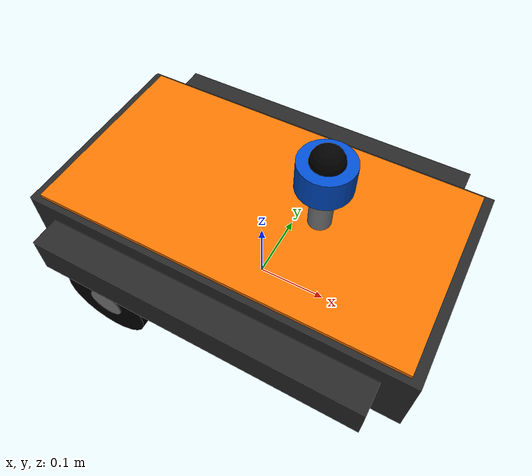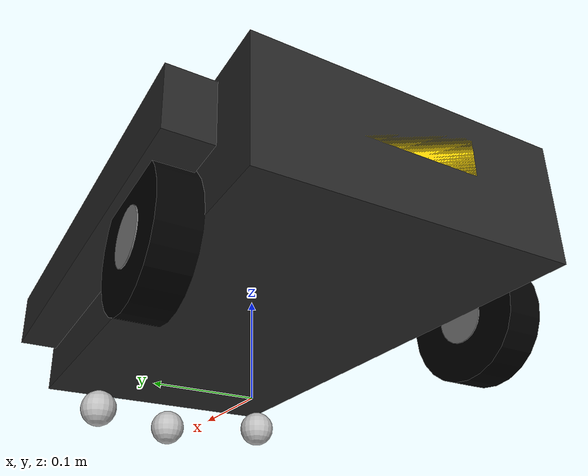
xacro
<?xml version="1.0"?>
<robot xmlns:xacro="http://www.ros.org/wiki/xacro" name="amr">

  <xacro:include filename="$(find amr)/description/materials.xacro"/>
  <xacro:include filename="$(find amr)/description/sensors.xacro"/>

  <!-- ══════════════════════════════════════════════════════════════
       PARAMETERS
       ══════════════════════════════════════════════════════════════ -->

  <!-- Chassis -->
  <xacro:property name="base_length"      value="0.52"/>
  <xacro:property name="base_width"       value="0.42"/>
  <xacro:property name="base_height"      value="0.11"/>
  <xacro:property name="base_mass"        value="11.0"/>

  <!-- Visual body width: narrower so wheels are visible -->
  <xacro:property name="body_width"       value="0.28"/>

  <!-- Drive wheels — placed at REAR of robot -->
  <xacro:property name="wheel_radius"     value="0.06"/>
  <xacro:property name="wheel_width"      value="0.035"/>
  <xacro:property name="wheel_separation" value="0.32"/>
  <xacro:property name="wheel_mass"       value="1.0"/>
  <xacro:property name="wheel_x_offset"   value="-0.14"/>

  <!-- Caster wheels -->
  <xacro:property name="caster_radius"    value="0.02"/>
  <xacro:property name="caster_mass"      value="0.3"/>
  <xacro:property name="caster_z"         value="${caster_radius - wheel_radius}"/>

  <!-- Front casters (pair) position -->
  <xacro:property name="caster_front_x"   value="0.175"/>
  <xacro:property name="caster_front_y"   value="0.10"/>

  <!-- Center caster (single, slightly ahead of front pair) -->
  <xacro:property name="caster_center_x"  value="0.22"/>

  <!-- LiDAR -->
  <xacro:property name="lidar_mass"       value="0.4"/>
  <xacro:property name="lidar_radius"     value="0.035"/>
  <xacro:property name="lidar_height"     value="0.04"/>
  <xacro:property name="post_radius"      value="0.015"/>
  <!-- LiDAR centre height from base_link origin -->
  <xacro:property name="lidar_z"          value="0.20"/>
  <xacro:property name="post_bottom"      value="${base_height}"/>
  <xacro:property name="post_top"         value="${lidar_z - lidar_height/2}"/>
  <xacro:property name="post_length"      value="${post_top - post_bottom}"/>
  <xacro:property name="post_centre_z"    value="${(post_bottom + post_top) / 2}"/>

  <!-- ══════════════════════════════════════════════════════════════
       INERTIA MACROS
       ══════════════════════════════════════════════════════════════ -->

  <xacro:macro name="inertia_box" params="m x y z">
    <inertial>
      <mass value="${m}"/>
      <inertia
        ixx="${m/12.0*(y*y+z*z)}" ixy="0" ixz="0"
        iyy="${m/12.0*(x*x+z*z)}" iyz="0"
        izz="${m/12.0*(x*x+y*y)}"/>
    </inertial>
  </xacro:macro>

  <xacro:macro name="inertia_cylinder" params="m r h">
    <inertial>
      <mass value="${m}"/>
      <inertia
        ixx="${m/12.0*(3*r*r+h*h)}" ixy="0" ixz="0"
        iyy="${m/12.0*(3*r*r+h*h)}" iyz="0"
        izz="${m/2.0*r*r}"/>
    </inertial>
  </xacro:macro>

  <xacro:macro name="inertia_sphere" params="m r">
    <inertial>
      <mass value="${m}"/>
      <inertia
        ixx="${2.0/5.0*m*r*r}" ixy="0" ixz="0"
        iyy="${2.0/5.0*m*r*r}" iyz="0"
        izz="${2.0/5.0*m*r*r}"/>
    </inertial>
  </xacro:macro>

  <!-- ══════════════════════════════════════════════════════════════
       LINKS
       ══════════════════════════════════════════════════════════════ -->

  <!-- Ground projection frame (no geometry) -->
  <link name="base_footprint"/>

  <!-- ── Main chassis ────────────────────────────────────────── -->
  <link name="base_link">
    <xacro:inertia_box m="${base_mass}" x="${base_length}" y="${base_width}" z="${base_height}"/>

    <!-- Lower body — main chassis plate, sits ON TOP of wheels -->
    <visual name="lower_body">
      <origin xyz="0 0 ${base_height/2}" rpy="0 0 0"/>
      <geometry>
        <box size="${base_length} ${body_width} ${base_height}"/>
      </geometry>
      <material name="dark_grey"/>
    </visual>

    <!-- Left side skirt -->
    <visual name="skirt_left">
      <origin xyz="0 ${body_width/2 + 0.025} ${base_height*0.6}" rpy="0 0 0"/>
      <geometry>
        <box size="${base_length*0.85} 0.04 ${base_height*0.5}"/>
      </geometry>
      <material name="dark_grey"/>
    </visual>

    <!-- Right side skirt -->
    <visual name="skirt_right">
      <origin xyz="0 ${-(body_width/2 + 0.025)} ${base_height*0.6}" rpy="0 0 0"/>
      <geometry>
        <box size="${base_length*0.85} 0.04 ${base_height*0.5}"/>
      </geometry>
      <material name="dark_grey"/>
    </visual>

    <!-- Top accent strip (orange industrial highlight) -->
    <visual name="top_accent">
      <origin xyz="0 0 ${base_height + 0.003}" rpy="0 0 0"/>
      <geometry>
        <box size="${base_length*0.95} ${body_width*0.95} 0.005"/>
      </geometry>
      <material name="orange"/>
    </visual>

    <!-- Front indicator panel (orange) -->
    <visual name="front_panel">
      <origin xyz="${base_length/2 - 0.005} 0 ${base_height*0.65}" rpy="0 0 0"/>
      <geometry>
        <box size="0.01 ${body_width*0.4} ${base_height*0.3}"/>
      </geometry>
      <material name="orange"/>
    </visual>

    <!-- Rear indicator panel (yellow) -->
    <visual name="rear_panel">
      <origin xyz="${-base_length/2 + 0.005} 0 ${base_height*0.65}" rpy="0 0 0"/>
      <geometry>
        <box size="0.01 ${body_width*0.4} ${base_height*0.3}"/>
      </geometry>
      <material name="yellow"/>
    </visual>

    <!-- LiDAR mount post -->
    <visual name="lidar_post">
      <origin xyz="0.08 0 ${post_centre_z}" rpy="0 0 0"/>
      <geometry>
        <cylinder radius="${post_radius}" length="${post_length}"/>
      </geometry>
      <material name="grey"/>
    </visual>

    <!-- Collision: full-size box -->
    <collision name="base_collision">
      <origin xyz="0 0 ${base_height/2}" rpy="0 0 0"/>
      <geometry>
        <box size="${base_length} ${base_width} ${base_height}"/>
      </geometry>
    </collision>
  </link>

  <!-- ── Drive wheel macro (rear wheels) ─────────────────────── -->
  <xacro:macro name="drive_wheel" params="prefix y_offset">
    <link name="${prefix}_wheel_link">
      <xacro:inertia_cylinder m="${wheel_mass}" r="${wheel_radius}" h="${wheel_width}"/>
      <visual>
        <origin xyz="0 0 0" rpy="${pi/2} 0 0"/>
        <geometry>
          <cylinder radius="${wheel_radius}" length="${wheel_width}"/>
        </geometry>
        <material name="black"/>
      </visual>
      <!-- Hub detail -->
      <visual name="hub">
        <origin xyz="0 0 0" rpy="${pi/2} 0 0"/>
        <geometry>
          <cylinder radius="${wheel_radius*0.4}" length="${wheel_width+0.002}"/>
        </geometry>
        <material name="grey"/>
      </visual>
      <collision>
        <origin xyz="0 0 0" rpy="${pi/2} 0 0"/>
        <geometry>
          <cylinder radius="${wheel_radius}" length="${wheel_width}"/>
        </geometry>
      </collision>
    </link>

    <joint name="${prefix}_wheel_joint" type="continuous">
      <parent link="base_link"/>
      <child link="${prefix}_wheel_link"/>
      <origin xyz="${wheel_x_offset} ${y_offset} 0" rpy="0 0 0"/>
      <axis xyz="0 1 0"/>
      <dynamics damping="0.1" friction="0.1"/>
    </joint>
  </xacro:macro>

  <!-- Instantiate rear drive wheels -->
  <xacro:drive_wheel prefix="left"  y_offset="${wheel_separation/2}"/>
  <xacro:drive_wheel prefix="right" y_offset="${-wheel_separation/2}"/>

  <!-- ── Caster wheel macro ──────────────────────────────────── -->
  <xacro:macro name="caster_wheel" params="name x_pos y_pos">
    <link name="${name}_link">
      <xacro:inertia_sphere m="${caster_mass}" r="${caster_radius}"/>
      <visual>
        <origin xyz="0 0 0" rpy="0 0 0"/>
        <geometry>
          <sphere radius="${caster_radius}"/>
        </geometry>
        <material name="light_grey"/>
      </visual>
      <collision>
        <origin xyz="0 0 0" rpy="0 0 0"/>
        <geometry>
          <sphere radius="${caster_radius}"/>
        </geometry>
      </collision>
    </link>

    <joint name="${name}_joint" type="fixed">
      <parent link="base_link"/>
      <child link="${name}_link"/>
      <origin xyz="${x_pos} ${y_pos} ${caster_z}" rpy="0 0 0"/>
    </joint>
  </xacro:macro>

  <!-- Instantiate 3 front caster wheels -->
  <xacro:caster_wheel name="caster_front_left"  x_pos="${caster_front_x}"  y_pos="${caster_front_y}"/>
  <xacro:caster_wheel name="caster_front_right" x_pos="${caster_front_x}"  y_pos="${-caster_front_y}"/>
  <xacro:caster_wheel name="caster_center"      x_pos="${caster_center_x}" y_pos="0"/>

  <!-- ── LiDAR ───────────────────────────────────────────────── -->
  <link name="lidar_link">
    <xacro:inertia_cylinder m="${lidar_mass}" r="${lidar_radius}" h="${lidar_height}"/>
    <visual>
      <origin xyz="0 0 0" rpy="0 0 0"/>
      <geometry>
        <cylinder radius="${lidar_radius}" length="${lidar_height}"/>
      </geometry>
      <material name="blue"/>
    </visual>
    <visual name="lidar_dome">
      <origin xyz="0 0 ${lidar_height/2}" rpy="0 0 0"/>
      <geometry>
        <sphere radius="${lidar_radius*0.6}"/>
      </geometry>
      <material name="black"/>
    </visual>
    <collision>
      <origin xyz="0 0 0" rpy="0 0 0"/>
      <geometry>
        <cylinder radius="${lidar_radius}" length="${lidar_height}"/>
      </geometry>
    </collision>
  </link>

  <!-- ══════════════════════════════════════════════════════════════
       JOINTS
       ══════════════════════════════════════════════════════════════ -->

  <joint name="base_joint" type="fixed">
    <parent link="base_footprint"/>
    <child  link="base_link"/>
    <origin xyz="0 0 ${wheel_radius}" rpy="0 0 0"/>
  </joint>

  <!-- LiDAR mounted front-centre on top of post -->
  <joint name="lidar_joint" type="fixed">
    <parent link="base_link"/>
    <child  link="lidar_link"/>
    <origin xyz="0.08 0 ${lidar_z}" rpy="0 0 0"/>
  </joint>

  <!-- ══════════════════════════════════════════════════════════════
       GAZEBO HARMONIC PLUGINS
       ══════════════════════════════════════════════════════════════ -->

  <gazebo>
    <plugin filename="gz-sim-diff-drive-system"
            name="gz::sim::systems::DiffDrive">
      <left_joint>left_wheel_joint</left_joint>
      <right_joint>right_wheel_joint</right_joint>

      <wheel_separation>${wheel_separation}</wheel_separation>
      <wheel_radius>${wheel_radius}</wheel_radius>

      <topic>/cmd_vel</topic>
      <odom_topic>/odom</odom_topic>

      <!-- CRITICAL: odom → base_footprint, NOT base_link!
           robot_state_publisher owns base_footprint → base_link.
           This prevents the dual-parent TF conflict. -->
      <frame_id>odom</frame_id>
      <child_frame_id>base_footprint</child_frame_id>
      <tf_topic>/tf</tf_topic>

      <publish_odom>true</publish_odom>
      <publish_odom_tf>true</publish_odom_tf>
      <publish_wheel_tf>false</publish_wheel_tf>

      <odom_publish_frequency>50</odom_publish_frequency>
      <max_linear_acceleration>0.5</max_linear_acceleration>
    </plugin>
  </gazebo>

  <gazebo>
    <plugin filename="gz-sim-joint-state-publisher-system"
            name="gz::sim::systems::JointStatePublisher">
      <topic>/joint_states</topic>
      <joint_name>left_wheel_joint</joint_name>
      <joint_name>right_wheel_joint</joint_name>
    </plugin>
  </gazebo>

  <!-- Wheel friction (rubber on tile μ=0.6) -->
  <gazebo reference="left_wheel_link">
    <mu1>0.6</mu1>  <mu2>0.6</mu2>
    <kp>1e6</kp>    <kd>100.0</kd>
    <minDepth>0.001</minDepth>
    <maxVel>1.0</maxVel>
  </gazebo>
  <gazebo reference="right_wheel_link">
    <mu1>0.6</mu1>  <mu2>0.6</mu2>
    <kp>1e6</kp>    <kd>100.0</kd>
    <minDepth>0.001</minDepth>
    <maxVel>1.0</maxVel>
  </gazebo>

  <!-- Caster friction = 0 (free rolling) -->
  <gazebo reference="caster_front_left_link">
    <mu1>0.0</mu1>  <mu2>0.0</mu2>
    <kp>1e6</kp>    <kd>100.0</kd>
  </gazebo>
  <gazebo reference="caster_front_right_link">
    <mu1>0.0</mu1>  <mu2>0.0</mu2>
    <kp>1e6</kp>    <kd>100.0</kd>
  </gazebo>
  <gazebo reference="caster_center_link">
    <mu1>0.0</mu1>  <mu2>0.0</mu2>
    <kp>1e6</kp>    <kd>100.0</kd>
  </gazebo>

  <!-- Gazebo material colours -->
  <xacro:gz_material_chassis link="base_link"/>
  <xacro:gz_material_wheel   link="left_wheel_link"/>
  <xacro:gz_material_wheel   link="right_wheel_link"/>
  <xacro:gz_material_caster  link="caster_front_left_link"/>
  <xacro:gz_material_caster  link="caster_front_right_link"/>
  <xacro:gz_material_caster  link="caster_center_link"/>
  <xacro:gz_material_lidar   link="lidar_link"/>

  <!-- LiDAR sensor -->
  <xacro:lidar_sensor/>

</robot>

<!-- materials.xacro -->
<!--
  materials.xacro
  Defines URDF visual materials and Gazebo material macros for the 2WD AMR.
-->
<robot xmlns:xacro="http://www.ros.org/wiki/xacro" name="materials">

  <!-- ═══════════════════════════════════════════
       URDF visual materials (RViz colours)
       ═══════════════════════════════════════════ -->
  <material name="black">
    <color rgba="0.0 0.0 0.0 1.0"/>
  </material>

  <material name="dark_grey">
    <color rgba="0.15 0.15 0.15 1.0"/>
  </material>

  <material name="grey">
    <color rgba="0.5 0.5 0.5 1.0"/>
  </material>

  <material name="light_grey">
    <color rgba="0.75 0.75 0.75 1.0"/>
  </material>

  <material name="white">
    <color rgba="1.0 1.0 1.0 1.0"/>
  </material>

  <material name="orange">
    <color rgba="1.0 0.45 0.0 1.0"/>
  </material>

  <material name="blue">
    <color rgba="0.0 0.3 0.8 1.0"/>
  </material>

  <material name="yellow">
    <color rgba="1.0 0.85 0.0 1.0"/>
  </material>

  <!-- Chassis body — dark grey -->
  <xacro:macro name="gz_material_chassis" params="link">
    <gazebo reference="${link}">
      <material>
        <ambient>0.18 0.18 0.18 1.0</ambient>
        <diffuse>0.18 0.18 0.18 1.0</diffuse>
        <specular>0.05 0.05 0.05 1.0</specular>
        <emissive>0.0 0.0 0.0 1.0</emissive>
      </material>
    </gazebo>
  </xacro:macro>

  <!-- Drive wheels — black rubber -->
  <xacro:macro name="gz_material_wheel" params="link">
    <gazebo reference="${link}">
      <material>
        <ambient>0.05 0.05 0.05 1.0</ambient>
        <diffuse>0.05 0.05 0.05 1.0</diffuse>
        <specular>0.02 0.02 0.02 1.0</specular>
        <emissive>0.0 0.0 0.0 1.0</emissive>
      </material>
    </gazebo>
  </xacro:macro>

  <!-- Caster spheres — light grey -->
  <xacro:macro name="gz_material_caster" params="link">
    <gazebo reference="${link}">
      <material>
        <ambient>0.7 0.7 0.7 1.0</ambient>
        <diffuse>0.7 0.7 0.7 1.0</diffuse>
        <specular>0.2 0.2 0.2 1.0</specular>
        <emissive>0.0 0.0 0.0 1.0</emissive>
      </material>
    </gazebo>
  </xacro:macro>

  <!-- LiDAR sensor — blue accent -->
  <xacro:macro name="gz_material_lidar" params="link">
    <gazebo reference="${link}">
      <material>
        <ambient>0.0 0.3 0.8 1.0</ambient>
        <diffuse>0.0 0.3 0.8 1.0</diffuse>
        <specular>0.3 0.3 0.3 1.0</specular>
        <emissive>0.0 0.0 0.0 1.0</emissive>
      </material>
    </gazebo>
  </xacro:macro>

</robot>
